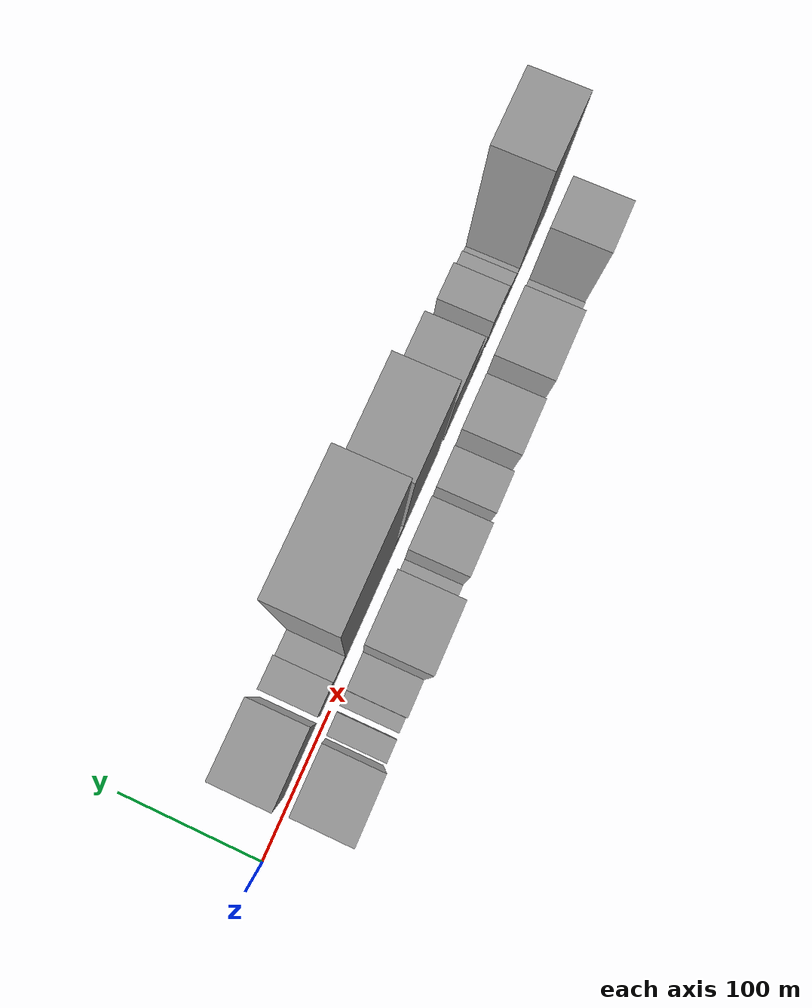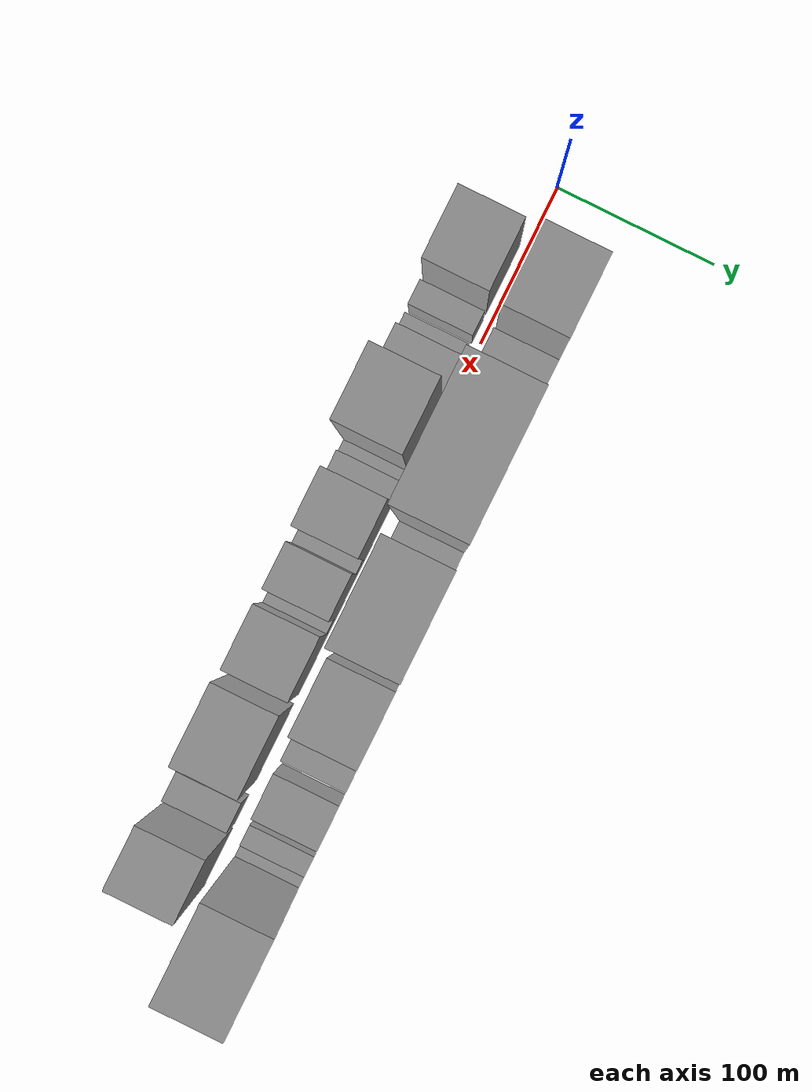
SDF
<sdf version="1.6">
 <world name="default">
  <scene>
   <sky><clouds><speed>12</speed></clouds></sky>
   <ambient>0.4 0.4 0.4 1</ambient>
   <background>0.7 0.7 0.7 1</background>
   <shadows>1</shadows>
  </scene>
  <gravity>0 0 -9.8066</gravity>
  <magnetic_field>6e-06 2.3e-05 -4.2e-05</magnetic_field>
  <physics default="0" name="default_physics" type="ode">
   <ode>
    <solver>
     <type>quick</type>
     <iters>10</iters>
     <sor>1.0</sor>
     <use_dynamic_moi_rescaling>0</use_dynamic_moi_rescaling>
    </solver>
    <constraints>
     <cfm>0</cfm>
     <erp>0.2</erp>
     <contact_max_correcting_vel>100</contact_max_correcting_vel>
     <contact_surface_layer>0.001</contact_surface_layer>
    </constraints>
   </ode>
   <max_step_size>0.004</max_step_size>
   <real_time_factor>1</real_time_factor>
   <real_time_update_rate>250</real_time_update_rate>
  </physics>
  <light name="sun" type="directional">
   <pose>0 0 10 0 0 0</pose>
   <diffuse>0.8 0.8 0.8 1</diffuse>
   <specular>0.2 0.2 0.2 1</specular>
   <attenuation>
    <range>1000</range>
    <constant>0.9</constant>
    <linear>0.01</linear>
    <quadratic>0.001</quadratic>
   </attenuation>
   <direction>-0.5 0.1 -0.9</direction>
  </light>
  <model name="building_1">
   <static>1</static>
   <pose>64.7713 24.5000 0 0.000000 0.000000 1.570796</pose>
   <link name="link">
    <pose>0 0 45.00 0 0 0</pose>
    <collision name="collision"><geometry><box><size>40.0000 49.5426 90.0000</size></box></geometry></collision>
    <visual name="visual">
     <cast_shadows>0</cast_shadows>
     <geometry><box><size>40.0000 49.5426 90.0000</size></box></geometry>
     <material>
      <script>
       <uri>model://grey_wall/materials/scripts</uri>
       <uri>model://grey_wall/materials/textures</uri>
       <name>vrc/grey_wall</name>
      </script>
     </material>
    </visual>
   </link>
  </model>
  <model name="building_2">
   <static>1</static>
   <pose>105.6642 24.5000 0 0.000000 0.000000 1.570796</pose>
   <link name="link">
    <pose>0 0 21.00 0 0 0</pose>
    <collision name="collision"><geometry><box><size>40.0000 22.2433 42.0000</size></box></geometry></collision>
    <visual name="visual">
     <cast_shadows>0</cast_shadows>
     <geometry><box><size>40.0000 22.2433 42.0000</size></box></geometry>
     <material>
      <script>
       <uri>model://grey_wall/materials/scripts</uri>
       <uri>model://grey_wall/materials/textures</uri>
       <name>vrc/grey_wall</name>
      </script>
     </material>
    </visual>
   </link>
  </model>
  <model name="building_3">
   <static>1</static>
   <pose>125.5210 24.5000 0 0.000000 0.000000 1.570796</pose>
   <link name="link">
    <pose>0 0 15.00 0 0 0</pose>
    <collision name="collision"><geometry><box><size>40.0000 17.4704 30.0000</size></box></geometry></collision>
    <visual name="visual">
     <cast_shadows>0</cast_shadows>
     <geometry><box><size>40.0000 17.4704 30.0000</size></box></geometry>
     <material>
      <script>
       <uri>model://grey_wall/materials/scripts</uri>
       <uri>model://grey_wall/materials/textures</uri>
       <name>vrc/grey_wall</name>
      </script>
     </material>
    </visual>
   </link>
  </model>
  <model name="building_4">
   <static>1</static>
   <pose>173.0121 24.5000 0 0.000000 0.000000 1.570796</pose>
   <link name="link">
    <pose>0 0 109.50 0 0 0</pose>
    <collision name="collision"><geometry><box><size>40.0000 77.5117 219.0000</size></box></geometry></collision>
    <visual name="visual">
     <cast_shadows>0</cast_shadows>
     <geometry><box><size>40.0000 77.5117 219.0000</size></box></geometry>
     <material>
      <script>
       <uri>model://grey_wall/materials/scripts</uri>
       <uri>model://grey_wall/materials/textures</uri>
       <name>vrc/grey_wall</name>
      </script>
     </material>
    </visual>
   </link>
  </model>
  <model name="building_5">
   <static>1</static>
   <pose>217.7400 24.5000 0 0.000000 0.000000 1.570796</pose>
   <link name="link">
    <pose>0 0 13.50 0 0 0</pose>
    <collision name="collision"><geometry><box><size>40.0000 11.9441 27.0000</size></box></geometry></collision>
    <visual name="visual">
     <cast_shadows>0</cast_shadows>
     <geometry><box><size>40.0000 11.9441 27.0000</size></box></geometry>
     <material>
      <script>
       <uri>model://grey_wall/materials/scripts</uri>
       <uri>model://grey_wall/materials/textures</uri>
       <name>vrc/grey_wall</name>
      </script>
     </material>
    </visual>
   </link>
  </model>
  <model name="building_6">
   <static>1</static>
   <pose>254.0440 24.5000 0 0.000000 0.000000 1.570796</pose>
   <link name="link">
    <pose>0 0 78.00 0 0 0</pose>
    <collision name="collision"><geometry><box><size>40.0000 60.6638 156.0000</size></box></geometry></collision>
    <visual name="visual">
     <cast_shadows>0</cast_shadows>
     <geometry><box><size>40.0000 60.6638 156.0000</size></box></geometry>
     <material>
      <script>
       <uri>model://grey_wall/materials/scripts</uri>
       <uri>model://grey_wall/materials/textures</uri>
       <name>vrc/grey_wall</name>
      </script>
     </material>
    </visual>
   </link>
  </model>
  <model name="building_7">
   <static>1</static>
   <pose>316.2565 24.5000 0 0.000000 0.000000 1.570796</pose>
   <link name="link">
    <pose>0 0 43.50 0 0 0</pose>
    <collision name="collision"><geometry><box><size>40.0000 45.7612 87.0000</size></box></geometry></collision>
    <visual name="visual">
     <cast_shadows>0</cast_shadows>
     <geometry><box><size>40.0000 45.7612 87.0000</size></box></geometry>
     <material>
      <script>
       <uri>model://grey_wall/materials/scripts</uri>
       <uri>model://grey_wall/materials/textures</uri>
       <name>vrc/grey_wall</name>
      </script>
     </material>
    </visual>
   </link>
  </model>
  <model name="building_8">
   <static>1</static>
   <pose>349.2459 24.5000 0 0.000000 0.000000 1.570796</pose>
   <link name="link">
    <pose>0 0 18.00 0 0 0</pose>
    <collision name="collision"><geometry><box><size>40.0000 20.2176 36.0000</size></box></geometry></collision>
    <visual name="visual">
     <cast_shadows>0</cast_shadows>
     <geometry><box><size>40.0000 20.2176 36.0000</size></box></geometry>
     <material>
      <script>
       <uri>model://grey_wall/materials/scripts</uri>
       <uri>model://grey_wall/materials/textures</uri>
       <name>vrc/grey_wall</name>
      </script>
     </material>
    </visual>
   </link>
  </model>
  <model name="building_9">
   <static>1</static>
   <pose>379.1778 24.5000 0 0.000000 0.000000 1.570796</pose>
   <link name="link">
    <pose>0 0 24.00 0 0 0</pose>
    <collision name="collision"><geometry><box><size>40.0000 27.6463 48.0000</size></box></geometry></collision>
    <visual name="visual">
     <cast_shadows>0</cast_shadows>
     <geometry><box><size>40.0000 27.6463 48.0000</size></box></geometry>
     <material>
      <script>
       <uri>model://grey_wall/materials/scripts</uri>
       <uri>model://grey_wall/materials/textures</uri>
       <name>vrc/grey_wall</name>
      </script>
     </material>
    </visual>
   </link>
  </model>
  <model name="building_10">
   <static>1</static>
   <pose>406.3961 24.5000 0 0.000000 0.000000 1.570796</pose>
   <link name="link">
    <pose>0 0 13.50 0 0 0</pose>
    <collision name="collision"><geometry><box><size>40.0000 12.7904 27.0000</size></box></geometry></collision>
    <visual name="visual">
     <cast_shadows>0</cast_shadows>
     <geometry><box><size>40.0000 12.7904 27.0000</size></box></geometry>
     <material>
      <script>
       <uri>model://grey_wall/materials/scripts</uri>
       <uri>model://grey_wall/materials/textures</uri>
       <name>vrc/grey_wall</name>
      </script>
     </material>
    </visual>
   </link>
  </model>
  <model name="building_11">
   <static>1</static>
   <pose>416.9157 24.5000 0 0.000000 0.000000 1.570796</pose>
   <link name="link">
    <pose>0 0 9.00 0 0 0</pose>
    <collision name="collision"><geometry><box><size>40.0000 8.2487 18.0000</size></box></geometry></collision>
    <visual name="visual">
     <cast_shadows>0</cast_shadows>
     <geometry><box><size>40.0000 8.2487 18.0000</size></box></geometry>
     <material>
      <script>
       <uri>model://grey_wall/materials/scripts</uri>
       <uri>model://grey_wall/materials/textures</uri>
       <name>vrc/grey_wall</name>
      </script>
     </material>
    </visual>
   </link>
  </model>
  <model name="building_12">
   <static>1</static>
   <pose>448.8330 24.5000 0 0.000000 0.000000 1.570796</pose>
   <link name="link">
    <pose>0 0 73.50 0 0 0</pose>
    <collision name="collision"><geometry><box><size>40.0000 55.5858 147.0000</size></box></geometry></collision>
    <visual name="visual">
     <cast_shadows>0</cast_shadows>
     <geometry><box><size>40.0000 55.5858 147.0000</size></box></geometry>
     <material>
      <script>
       <uri>model://grey_wall/materials/scripts</uri>
       <uri>model://grey_wall/materials/textures</uri>
       <name>vrc/grey_wall</name>
      </script>
     </material>
    </visual>
   </link>
  </model>
  <model name="building_13">
   <static>1</static>
   <pose>61.8248 -24.5000 0 0.000000 0.000000 1.570796</pose>
   <link name="link">
    <pose>0 0 37.50 0 0 0</pose>
    <collision name="collision"><geometry><box><size>40.0000 43.6497 75.0000</size></box></geometry></collision>
    <visual name="visual">
     <cast_shadows>0</cast_shadows>
     <geometry><box><size>40.0000 43.6497 75.0000</size></box></geometry>
     <material>
      <script>
       <uri>model://grey_wall/materials/scripts</uri>
       <uri>model://grey_wall/materials/textures</uri>
       <name>vrc/grey_wall</name>
      </script>
     </material>
    </visual>
   </link>
  </model>
  <model name="building_14">
   <static>1</static>
   <pose>94.2804 -24.5000 0 0.000000 0.000000 1.570796</pose>
   <link name="link">
    <pose>0 0 15.00 0 0 0</pose>
    <collision name="collision"><geometry><box><size>40.0000 15.2615 30.0000</size></box></geometry></collision>
    <visual name="visual">
     <cast_shadows>0</cast_shadows>
     <geometry><box><size>40.0000 15.2615 30.0000</size></box></geometry>
     <material>
      <script>
       <uri>model://grey_wall/materials/scripts</uri>
       <uri>model://grey_wall/materials/textures</uri>
       <name>vrc/grey_wall</name>
      </script>
     </material>
    </visual>
   </link>
  </model>
  <model name="building_15">
   <static>1</static>
   <pose>110.9795 -24.5000 0 0.000000 0.000000 1.570796</pose>
   <link name="link">
    <pose>0 0 12.00 0 0 0</pose>
    <collision name="collision"><geometry><box><size>40.0000 10.1367 24.0000</size></box></geometry></collision>
    <visual name="visual">
     <cast_shadows>0</cast_shadows>
     <geometry><box><size>40.0000 10.1367 24.0000</size></box></geometry>
     <material>
      <script>
       <uri>model://grey_wall/materials/scripts</uri>
       <uri>model://grey_wall/materials/textures</uri>
       <name>vrc/grey_wall</name>
      </script>
     </material>
    </visual>
   </link>
  </model>
  <model name="building_16">
   <static>1</static>
   <pose>128.3566 -24.5000 0 0.000000 0.000000 1.570796</pose>
   <link name="link">
    <pose>0 0 22.50 0 0 0</pose>
    <collision name="collision"><geometry><box><size>40.0000 24.6174 45.0000</size></box></geometry></collision>
    <visual name="visual">
     <cast_shadows>0</cast_shadows>
     <geometry><box><size>40.0000 24.6174 45.0000</size></box></geometry>
     <material>
      <script>
       <uri>model://grey_wall/materials/scripts</uri>
       <uri>model://grey_wall/materials/textures</uri>
       <name>vrc/grey_wall</name>
      </script>
     </material>
    </visual>
   </link>
  </model>
  <model name="building_17">
   <static>1</static>
   <pose>162.4548 -24.5000 0 0.000000 0.000000 1.570796</pose>
   <link name="link">
    <pose>0 0 63.00 0 0 0</pose>
    <collision name="collision"><geometry><box><size>40.0000 43.5791 126.0000</size></box></geometry></collision>
    <visual name="visual">
     <cast_shadows>0</cast_shadows>
     <geometry><box><size>40.0000 43.5791 126.0000</size></box></geometry>
     <material>
      <script>
       <uri>model://grey_wall/materials/scripts</uri>
       <uri>model://grey_wall/materials/textures</uri>
       <name>vrc/grey_wall</name>
      </script>
     </material>
    </visual>
   </link>
  </model>
  <model name="building_18">
   <static>1</static>
   <pose>187.9737 -24.5000 0 0.000000 0.000000 1.570796</pose>
   <link name="link">
    <pose>0 0 7.50 0 0 0</pose>
    <collision name="collision"><geometry><box><size>40.0000 7.4587 15.0000</size></box></geometry></collision>
    <visual name="visual">
     <cast_shadows>0</cast_shadows>
     <geometry><box><size>40.0000 7.4587 15.0000</size></box></geometry>
     <material>
      <script>
       <uri>model://grey_wall/materials/scripts</uri>
       <uri>model://grey_wall/materials/textures</uri>
       <name>vrc/grey_wall</name>
      </script>
     </material>
    </visual>
   </link>
  </model>
  <model name="building_19">
   <static>1</static>
   <pose>198.3030 -24.5000 0 0.000000 0.000000 1.570796</pose>
   <link name="link">
    <pose>0 0 13.50 0 0 0</pose>
    <collision name="collision"><geometry><box><size>40.0000 13.2000 27.0000</size></box></geometry></collision>
    <visual name="visual">
     <cast_shadows>0</cast_shadows>
     <geometry><box><size>40.0000 13.2000 27.0000</size></box></geometry>
     <material>
      <script>
       <uri>model://grey_wall/materials/scripts</uri>
       <uri>model://grey_wall/materials/textures</uri>
       <name>vrc/grey_wall</name>
      </script>
     </material>
    </visual>
   </link>
  </model>
  <model name="building_20">
   <static>1</static>
   <pose>222.6523 -24.5000 0 0.000000 0.000000 1.570796</pose>
   <link name="link">
    <pose>0 0 34.50 0 0 0</pose>
    <collision name="collision"><geometry><box><size>40.0000 35.4986 69.0000</size></box></geometry></collision>
    <visual name="visual">
     <cast_shadows>0</cast_shadows>
     <geometry><box><size>40.0000 35.4986 69.0000</size></box></geometry>
     <material>
      <script>
       <uri>model://grey_wall/materials/scripts</uri>
       <uri>model://grey_wall/materials/textures</uri>
       <name>vrc/grey_wall</name>
      </script>
     </material>
    </visual>
   </link>
  </model>
  <model name="building_21">
   <static>1</static>
   <pose>244.7840 -24.5000 0 0.000000 0.000000 1.570796</pose>
   <link name="link">
    <pose>0 0 10.50 0 0 0</pose>
    <collision name="collision"><geometry><box><size>40.0000 8.7647 21.0000</size></box></geometry></collision>
    <visual name="visual">
     <cast_shadows>0</cast_shadows>
     <geometry><box><size>40.0000 8.7647 21.0000</size></box></geometry>
     <material>
      <script>
       <uri>model://grey_wall/materials/scripts</uri>
       <uri>model://grey_wall/materials/textures</uri>
       <name>vrc/grey_wall</name>
      </script>
     </material>
    </visual>
   </link>
  </model>
  <model name="building_22">
   <static>1</static>
   <pose>263.5239 -24.5000 0 0.000000 0.000000 1.570796</pose>
   <link name="link">
    <pose>0 0 28.50 0 0 0</pose>
    <collision name="collision"><geometry><box><size>40.0000 28.7151 57.0000</size></box></geometry></collision>
    <visual name="visual">
     <cast_shadows>0</cast_shadows>
     <geometry><box><size>40.0000 28.7151 57.0000</size></box></geometry>
     <material>
      <script>
       <uri>model://grey_wall/materials/scripts</uri>
       <uri>model://grey_wall/materials/textures</uri>
       <name>vrc/grey_wall</name>
      </script>
     </material>
    </visual>
   </link>
  </model>
  <model name="building_23">
   <static>1</static>
   <pose>282.1870 -24.5000 0 0.000000 0.000000 1.570796</pose>
   <link name="link">
    <pose>0 0 9.00 0 0 0</pose>
    <collision name="collision"><geometry><box><size>40.0000 8.6112 18.0000</size></box></geometry></collision>
    <visual name="visual">
     <cast_shadows>0</cast_shadows>
     <geometry><box><size>40.0000 8.6112 18.0000</size></box></geometry>
     <material>
      <script>
       <uri>model://grey_wall/materials/scripts</uri>
       <uri>model://grey_wall/materials/textures</uri>
       <name>vrc/grey_wall</name>
      </script>
     </material>
    </visual>
   </link>
  </model>
  <model name="building_24">
   <static>1</static>
   <pose>306.0990 -24.5000 0 0.000000 0.000000 1.570796</pose>
   <link name="link">
    <pose>0 0 33.00 0 0 0</pose>
    <collision name="collision"><geometry><box><size>40.0000 39.2129 66.0000</size></box></geometry></collision>
    <visual name="visual">
     <cast_shadows>0</cast_shadows>
     <geometry><box><size>40.0000 39.2129 66.0000</size></box></geometry>
     <material>
      <script>
       <uri>model://grey_wall/materials/scripts</uri>
       <uri>model://grey_wall/materials/textures</uri>
       <name>vrc/grey_wall</name>
      </script>
     </material>
    </visual>
   </link>
  </model>
  <model name="building_25">
   <static>1</static>
   <pose>356.2452 -24.5000 0 0.000000 0.000000 1.570796</pose>
   <link name="link">
    <pose>0 0 42.00 0 0 0</pose>
    <collision name="collision"><geometry><box><size>40.0000 49.0793 84.0000</size></box></geometry></collision>
    <visual name="visual">
     <cast_shadows>0</cast_shadows>
     <geometry><box><size>40.0000 49.0793 84.0000</size></box></geometry>
     <material>
      <script>
       <uri>model://grey_wall/materials/scripts</uri>
       <uri>model://grey_wall/materials/textures</uri>
       <name>vrc/grey_wall</name>
      </script>
     </material>
    </visual>
   </link>
  </model>
  <model name="building_26">
   <static>1</static>
   <pose>398.9200 -24.5000 0 0.000000 0.000000 1.570796</pose>
   <link name="link">
    <pose>0 0 18.00 0 0 0</pose>
    <collision name="collision"><geometry><box><size>40.0000 18.2703 36.0000</size></box></geometry></collision>
    <visual name="visual">
     <cast_shadows>0</cast_shadows>
     <geometry><box><size>40.0000 18.2703 36.0000</size></box></geometry>
     <material>
      <script>
       <uri>model://grey_wall/materials/scripts</uri>
       <uri>model://grey_wall/materials/textures</uri>
       <name>vrc/grey_wall</name>
      </script>
     </material>
    </visual>
   </link>
  </model>
  <model name="building_27">
   <static>1</static>
   <pose>429.6036 -24.5000 0 0.000000 0.000000 1.570796</pose>
   <link name="link">
    <pose>0 0 52.50 0 0 0</pose>
    <collision name="collision"><geometry><box><size>40.0000 37.0968 105.0000</size></box></geometry></collision>
    <visual name="visual">
     <cast_shadows>0</cast_shadows>
     <geometry><box><size>40.0000 37.0968 105.0000</size></box></geometry>
     <material>
      <script>
       <uri>model://grey_wall/materials/scripts</uri>
       <uri>model://grey_wall/materials/textures</uri>
       <name>vrc/grey_wall</name>
      </script>
     </material>
    </visual>
   </link>
  </model>
 </world>
</sdf>
